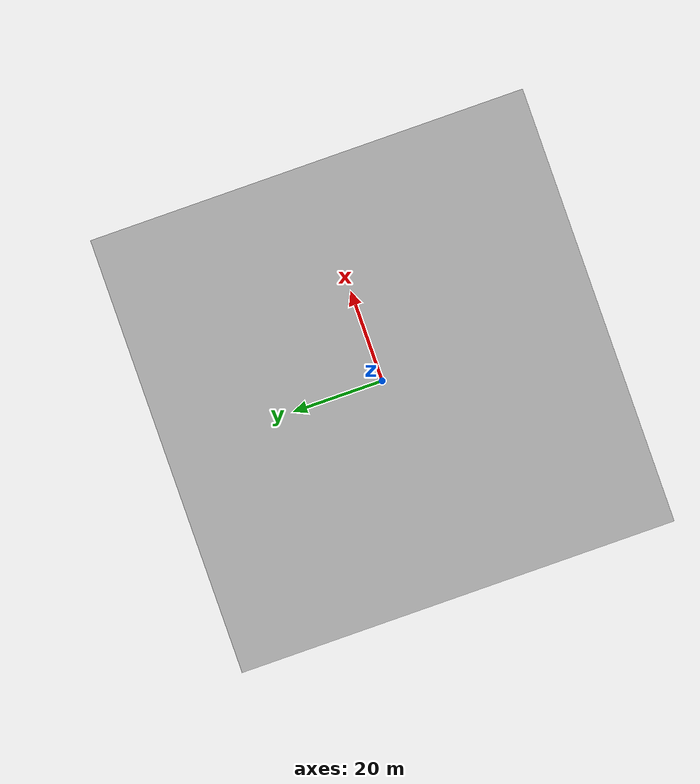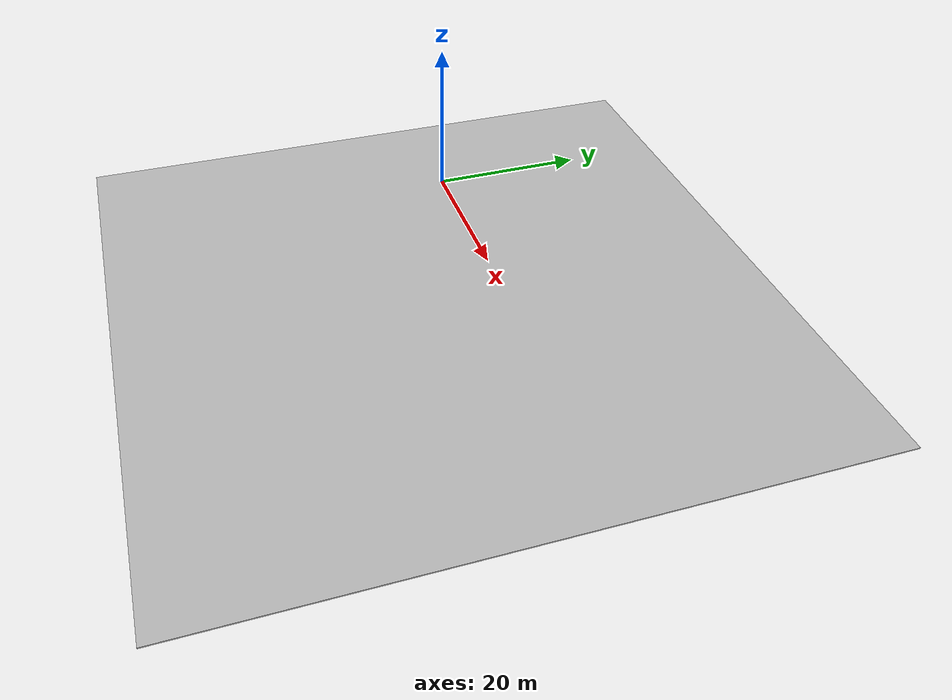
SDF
<?xml version="1.0" ?>

<sdf version="1.8">
  <world name="auv_world">

    <!-- Physics                    -->

    <physics name="1ms" type="ignored">
      <max_step_size>0.001</max_step_size>
      <real_time_factor>1.0</real_time_factor>
    </physics>

    <!-- Gravity                    -->

    <gravity>0 0 -9.81</gravity>

    <!-- IMU system                -->

    <plugin
      filename="gz-sim-imu-system"
      name="gz::sim::systems::Imu">
    </plugin>

    <!-- Required Gazebo systems    -->

    <plugin
      filename="gz-sim-physics-system"
      name="gz::sim::systems::Physics">
    </plugin>

    <plugin
      filename="gz-sim-user-commands-system"
      name="gz::sim::systems::UserCommands">
    </plugin>

    <plugin
      filename="gz-sim-scene-broadcaster-system"
      name="gz::sim::systems::SceneBroadcaster">
    </plugin>

    <!-- Buoyancy                   -->

    <plugin
      filename="gz-sim-buoyancy-system"
      name="gz::sim::systems::Buoyancy">

      <graded_buoyancy>

        <!-- Water -->
        <default_density>1000</default_density>

        <!-- Air above z = 0 -->
        <density_change>
          <above_depth>0</above_depth>
          <density>1</density>
        </density_change>

      </graded_buoyancy>

      <!-- Only the AUV body receives buoyancy -->
      <enable>my_auv</enable>

    </plugin>

    <model name="seabed">
  <static>true</static>

  <pose>0 0 -20.1 0 0 0</pose>

  <link name="seabed_link">

    <collision name="seabed_collision">
      <geometry>
        <box>
          <size>100 100 0.2</size>
        </box>
      </geometry>
    </collision>

    <visual name="seabed_visual">
      <geometry>
        <box>
          <size>100 100 0.2</size>
        </box>
      </geometry>
    </visual>

  </link>
</model>

  </world>
</sdf>
